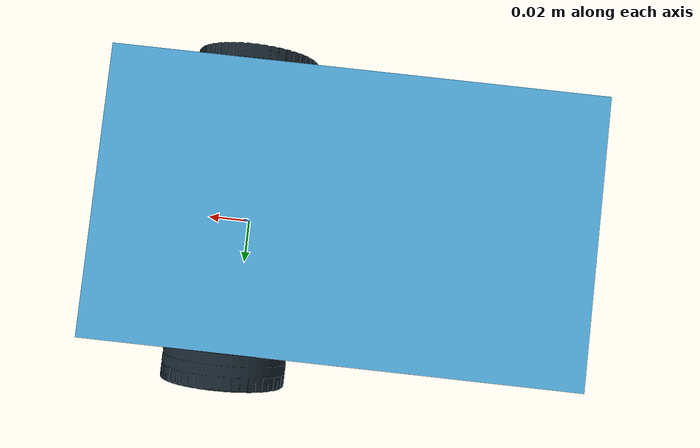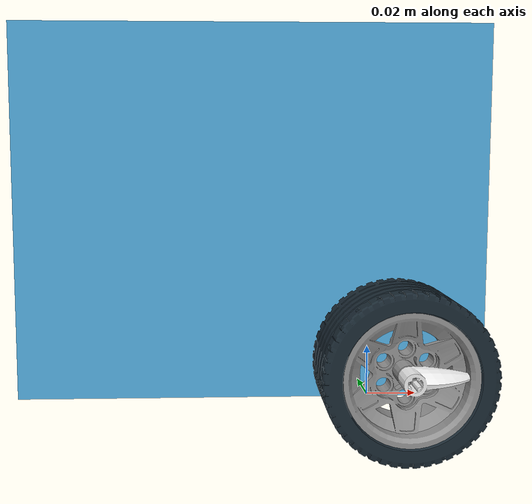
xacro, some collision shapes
<?xml version="1.0"?>
<robot name="diff_robot" xmlns:xacro="http://ros.org/wiki/xacro">
  <xacro:include filename="$(find ugv_description)/urdf/simple_diff_robot_gazebo.xacro"/>

  <link name="base_footprint"/>

  <joint name="base_joint" type="fixed">
    <parent link="base_footprint"/>
    <child link="base_link"/>
    <origin xyz="0 0 0.028" rpy="0 0 0"/>
  </joint>

  <link name="base_link"> <!-- Important: Every visual, collision and inertial tag has its own origin -->
    <visual>
      <origin xyz="-0.0001 0 0" rpy="0 0 -1.57"/>
      <geometry>
        <!--box size="0.094 0.160 0.1265"/-->
        <!--mesh filename="package://ugv_description/meshes/collada/modelo_base_diff_base_v2.dae" scale="1 1 1"/-->
        <mesh filename="package://ugv_description/meshes/wavefront/modelo_base_diff_base_v2.obj" scale="1 1 1"/>
      </geometry>
    </visual>

    <collision>
      <origin xyz="-0.0485 0 0.050" rpy="0 0 -1.57"/>
      <geometry>
        <box size="0.094 0.160 0.1265"/>
      </geometry>
    </collision>

    <inertial>
      <origin xyz="-0.0485 0 0.050" rpy="0 0 -1.57"/>
      <!-- origin xyz="-0.0001 0 0.050" rpy="0 0 -1.57"/--> <!-- Since a plugin is used, an offset along its X axis can affect the robot behavior -->
      <mass value="0.536"/>
      <inertia ixx="1.838e-03" ixy="0" ixz="0"
               iyy="1.104e-03" iyz="0"
               izz="1.524e-03" />
    </inertial>
  </link>

  <!-- Wheels definition (joints and links) -->
  <joint name="wheel_left_joint" type="continuous">
    <parent link="base_link"/>
    <child link="wheel_left_link"/>
    <origin xyz="0 0.061 0" rpy="-1.57 0 0"/>
    <axis xyz="0 0 1"/>
  </joint>

  <link name="wheel_left_link">
    <visual>
      <origin xyz="0 0 0" rpy="1.57 1.57 0"/>
      <geometry>
        <!--cylinder length="0.018" radius="0.033"/-->
        <mesh filename="package://ugv_description/meshes/collada/modelo_base_diff_wheel_left_v2.dae" scale="1 1 1"/>
      </geometry>
    </visual>

    <collision>
      <origin xyz="0 0 0" rpy="0 0 0"/>
      <geometry>
        <cylinder length="0.030" radius="0.028"/>
      </geometry>
    </collision>

    <inertial>
      <origin xyz="0 0 0" />
      <mass value="0.024" />
      <inertia ixx="6.272e-06" ixy="0" ixz="0"
               iyy="6.272e-06" iyz="0"
               izz="9.408e-06" />
    </inertial>
  </link>

  <joint name="wheel_right_joint" type="continuous">
    <parent link="base_link"/>
    <child link="wheel_right_link"/>
    <origin xyz="0 -0.061 0" rpy="-1.57 0 0"/>
    <axis xyz="0 0 1"/>
  </joint>

  <link name="wheel_right_link">
    <visual>
      <origin xyz="0 0 0" rpy="1.57 1.57 0"/>
      <geometry>
        <!--cylinder length="0.018" radius="0.033"/-->
        <mesh filename="package://ugv_description/meshes/collada/modelo_base_diff_wheel_right_v2.dae" scale="1 1 1"/>
      </geometry>
    </visual>

    <collision>
      <origin xyz="0 0 0" rpy="0 0 0"/>
      <geometry>
        <cylinder length="0.030" radius="0.028"/>
      </geometry>
    </collision>

    <inertial>
      <origin xyz="0 0 0" />
      <mass value="0.024" />
      <inertia ixx="6.272e-06" ixy="0" ixz="0"
               iyy="6.272e-06" iyz="0"
               izz="9.408e-06" />
    </inertial>
  </link>

  <!-- Caster wheel definition (joint and link) -->
  <joint name="caster_joint" type="fixed">
    <parent link="base_link"/>
    <child link="caster_link"/>
    <origin xyz="-0.106 0 -0.016" rpy="0 0 0"/>
  </joint>

  <link name="caster_link">
    <visual>
      <origin xyz="0 0 0" rpy="0 0 -1.57"/>
      <geometry>
        <mesh filename="package://ugv_description/meshes/collada/modelo_base_diff_wheel_caster_v2.dae" scale="1 1 1"/>
        <!--sphere radius="0.009"/-->
      </geometry>
    </visual>

    <collision>
      <origin xyz="0 0 0" rpy="0 0 0"/>
      <geometry>
        <sphere radius="0.009"/>
      </geometry>
    </collision>
    <!-- Since the caster wheel is only a point of contact, inertial tag can be ommited -->
  </link>

</robot>

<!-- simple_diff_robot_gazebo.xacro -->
<robot name="diff_robot" xmlns:xacro="http://ros.org/wiki/xacro">

  <!-- Formatear robot_name con dos dígitos si es menor a 10 -->
  <xacro:property name="robot_id" value="1"/>
  <xacro:property name="robot_id_num" value="${int(robot_id)}"/>
  <xacro:property name="robot_name" value="LegoEV3${'%02d' % robot_id_num}"/>

  <material name="light_gray"> <!-- Custom color (for RViz) -->
    <color rgba="${209/255} ${209/255} ${209/255} 1.0"/>
  </material>

  <gazebo reference="base_link">
    <!-- Color of the base link in Gazebo -->
    <!--material name="light_gray"/-->
  </gazebo>

  <gazebo reference="wheel_left_link"> <!-- Physical properties setup -->
    <mu1>1.0</mu1>
    <mu2>0.8</mu2>
    <kp>1000000.0</kp>
    <kd>100.0</kd>
    <minDepth>0.001</minDepth>
    <maxVel>0.1</maxVel>
    <fdir1>1 0 0</fdir1>
  </gazebo>

  <gazebo reference="wheel_right_link">
    <mu1>1.0</mu1>
    <mu2>0.8</mu2>
    <kp>1000000.0</kp>
    <kd>100.0</kd>
    <minDepth>0.001</minDepth>
    <maxVel>0.1</maxVel>
    <fdir1>1 0 0</fdir1>
  </gazebo>

  <gazebo reference="caster_link">
    <mu1>0.01</mu1>
    <mu2>0.01</mu2>
    <kp>1000000.0</kp>
    <kd>100.0</kd>
    <minDepth>0.001</minDepth>
    <maxVel>1.0</maxVel>
  </gazebo>

  <gazebo>
    <plugin name="diff_controller" filename="libgazebo_ros_diff_drive.so"> <!-- Plugin for a differential mobile robot -->
      <commandTopic>${robot_name}/cmd_vel_kinematic</commandTopic>
      <odometryTopic>${robot_name}/odom_simulate</odometryTopic>
      <odometryFrame>odom</odometryFrame>
      <odometrySource>world</odometrySource> <!-- world or encoder -->
      <publishOdomTF>true</publishOdomTF> <!-- Publish the fixed frame called odom, default = true-->
      <robotBaseFrame>base_footprint</robotBaseFrame>
      <publishWheelTF>true</publishWheelTF> <!-- default = false. To show the spining wheels attached to the robot. Thus, joint_state_publisher node must be omitted -->
      <publishTf>true</publishTf> <!-- default = true-->
      <publishWheelJointState>false</publishWheelJointState>
      <legacyMode>false</legacyMode>
      <updateRate>30</updateRate>
      <leftJoint>wheel_left_joint</leftJoint>
      <rightJoint>wheel_right_joint</rightJoint>
      <wheelSeparation>0.120</wheelSeparation>
      <wheelDiameter>0.056</wheelDiameter>
      <wheelAcceleration>2</wheelAcceleration>
      <wheelTorque>20</wheelTorque>
      <rosDebugLevel>na</rosDebugLevel>
    </plugin>
  </gazebo>

</robot>
